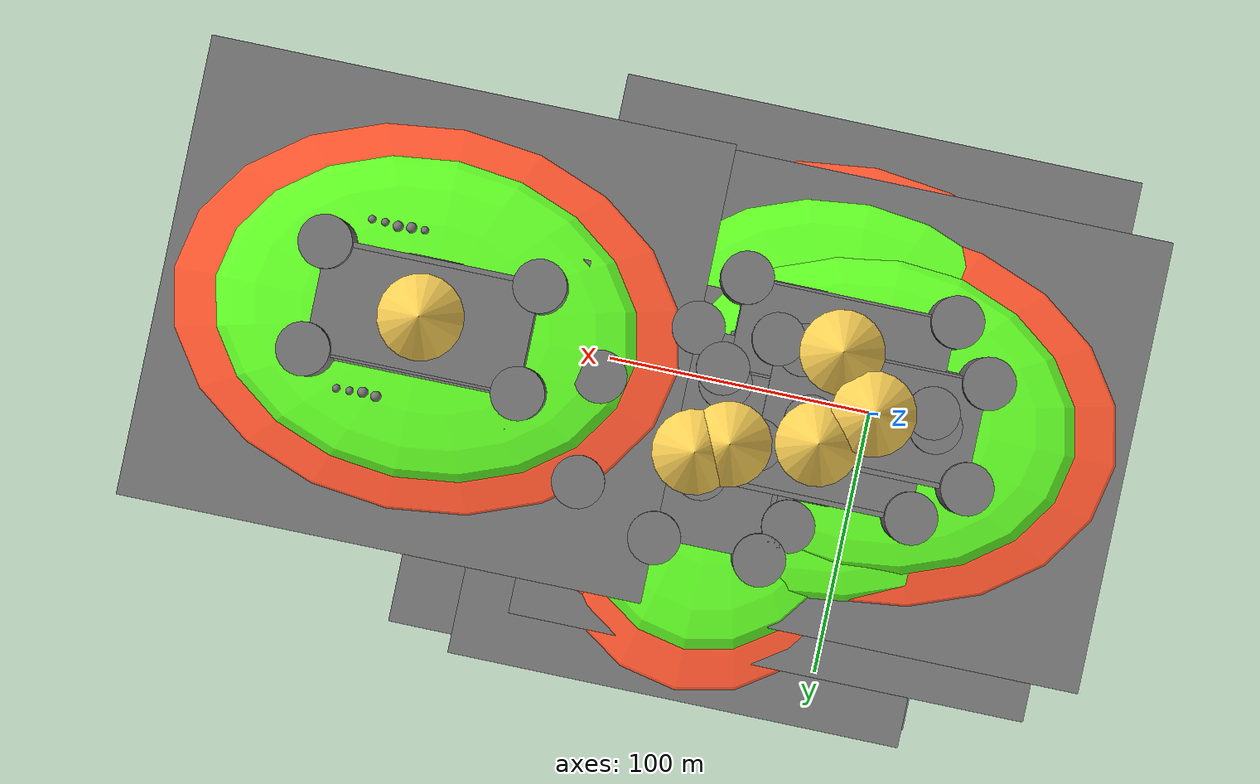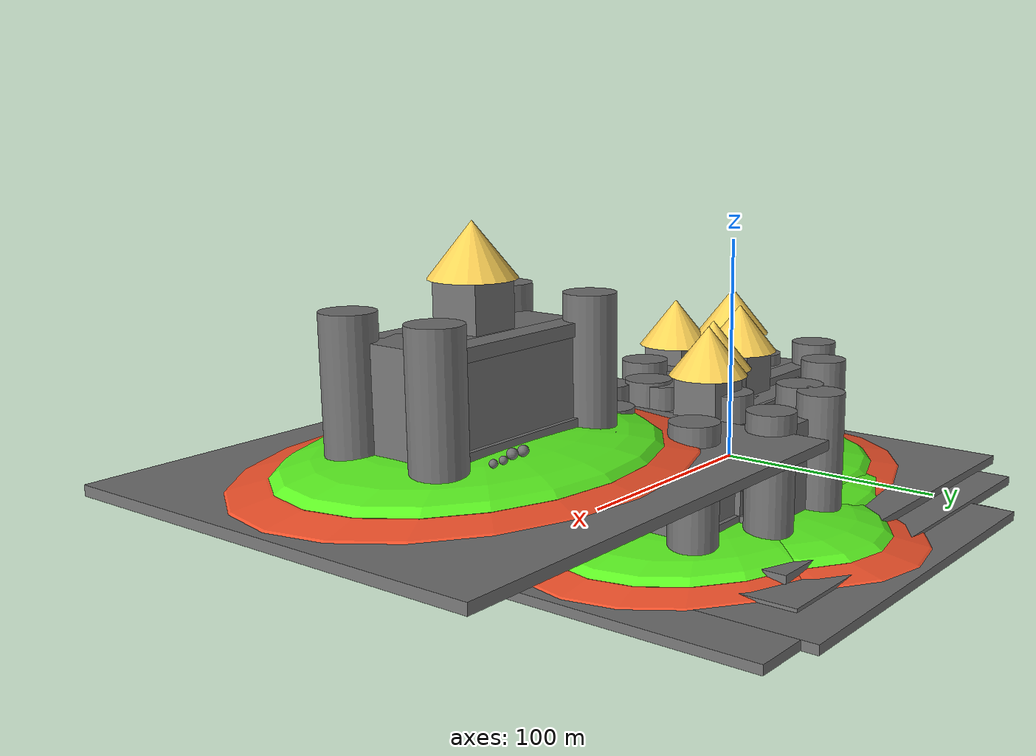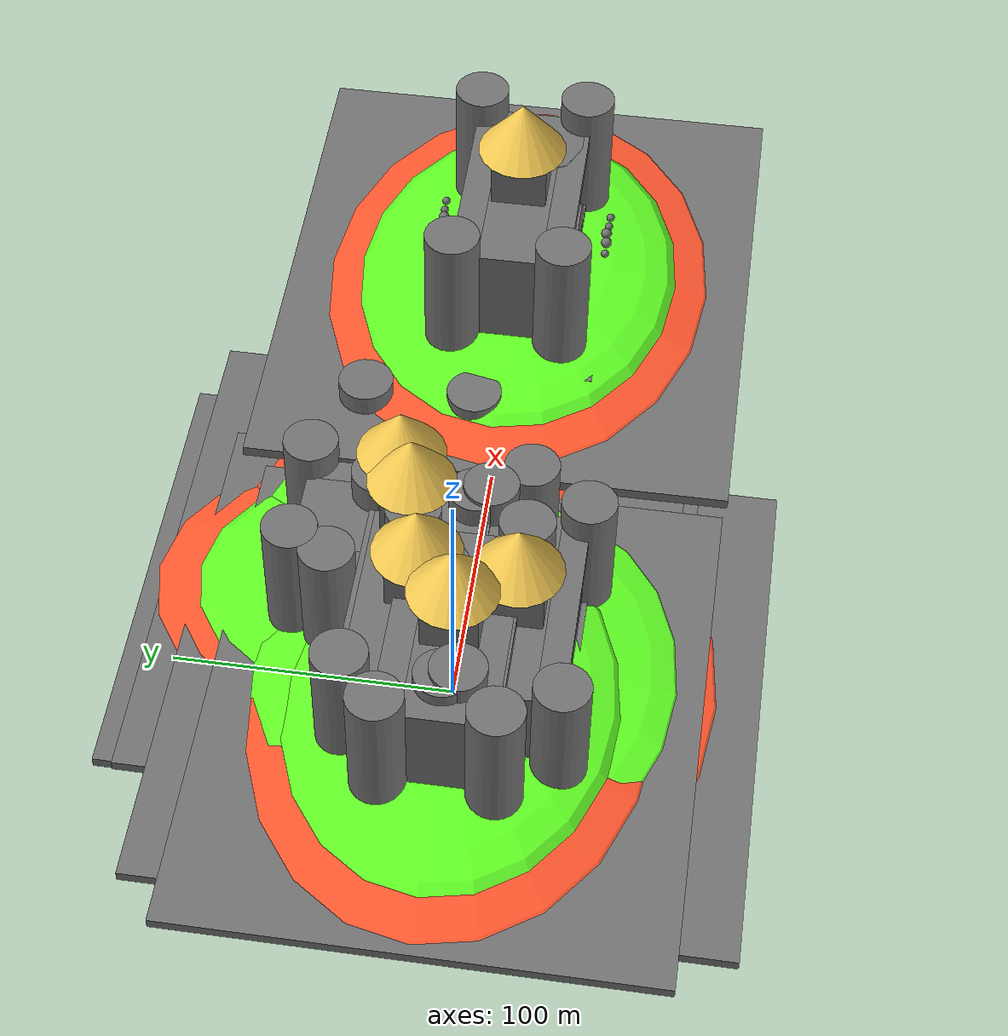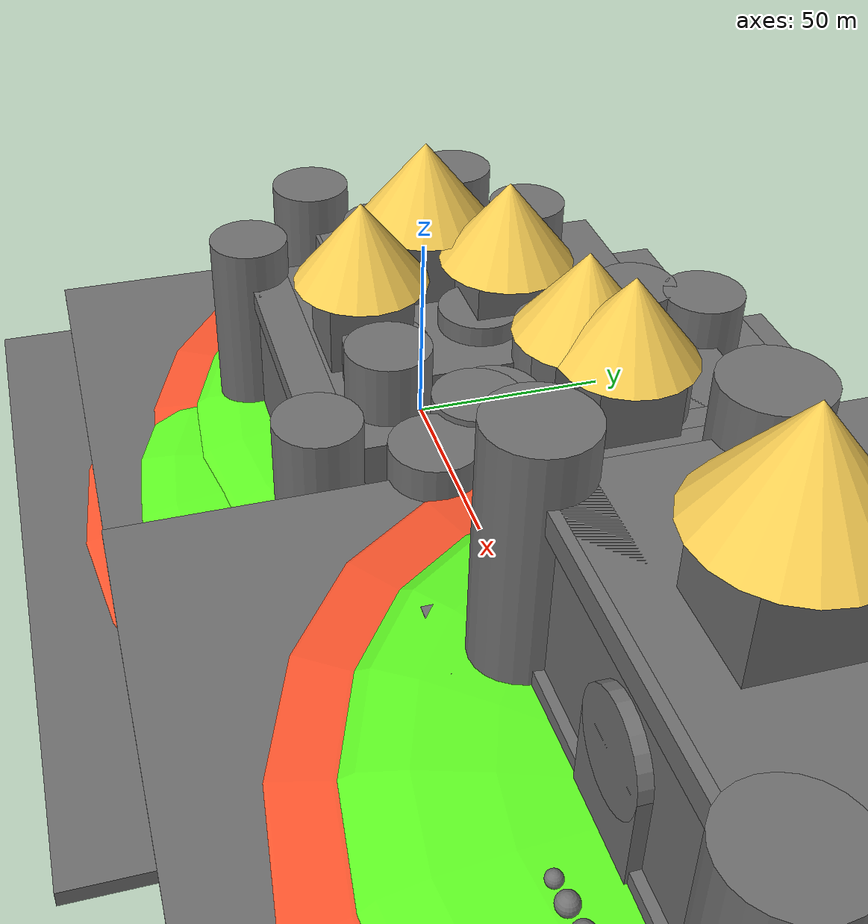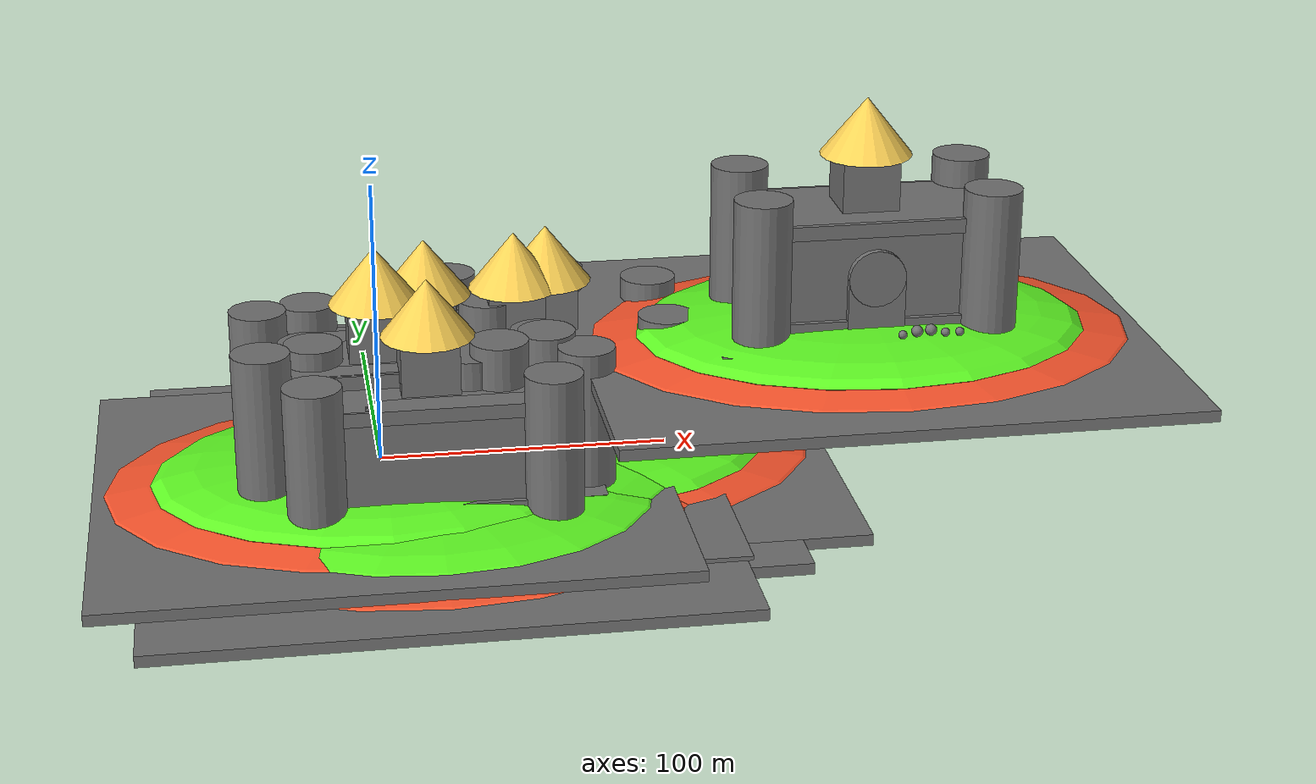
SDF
<sdf version="1.10">
 <world name="waterworld">
  <model name="north_arena_floor_model">
   <static>true</static>
   <pose>15 0 5 0 0 0</pose>
   <link name="north_arena_floor_link">
    <collision name="col">
     <geometry><box><size>8 8 0.1</size></box></geometry>
     <surface>
      <friction><ode><mu>0.9</mu><mu2>0.9</mu2><fdir1>1 0 0</fdir1></ode></friction>
      <bounce><restitution_coefficient>0.03</restitution_coefficient><threshold>1e3</threshold></bounce>
      <contact><ode><kp>1e6</kp><kd>1e3</kd><max_vel>1.0</max_vel><min_depth>0.001</min_depth></ode></contact>
     </surface>
    </collision>
    <visual name="vis">
     <geometry><box><size>8 8 0.1</size></box></geometry>
     <material>
      <ambient>0.35 0.35 0.35 1</ambient>
      <diffuse>0.45 0.45 0.45 1</diffuse>
      <pbr>
       <metal>
        <albedo_map>model://textures/grass_textures/green_grass_seamless.jpg</albedo_map>
        <roughness>0.9</roughness>
        <metalness>0.0</metalness>
       </metal>
      </pbr>
     </material>
    </visual>
   </link>
  </model>
  <model name="tidal_island_segment_1_floor_model">
   <static>true</static>
   <pose>35 -8 0.8 0 0 0</pose>
   <link name="north_arena_floor_link">
    <collision name="col">
     <geometry><box><size>8 24 0.1</size></box></geometry>
     <surface>
      <friction><ode><mu>0.9</mu><mu2>0.9</mu2><fdir1>1 0 0</fdir1></ode></friction>
      <bounce><restitution_coefficient>0.03</restitution_coefficient><threshold>1e3</threshold></bounce>
      <contact><ode><kp>1e6</kp><kd>1e3</kd><max_vel>1.0</max_vel><min_depth>0.001</min_depth></ode></contact>
     </surface>
    </collision>
    <visual name="vis">
     <geometry><box><size>8 24 0.1</size></box></geometry>
     <material>
      <ambient>0.35 0.35 0.35 1</ambient>
      <diffuse>0.45 0.45 0.45 1</diffuse>
      <pbr>
       <metal>
        <albedo_map>model://textures/grass_textures/green_grass_seamless.jpg</albedo_map>
        <roughness>0.9</roughness>
        <metalness>0.0</metalness>
       </metal>
      </pbr>
     </material>
    </visual>
   </link>
  </model>
  <model name="tidal_island_segment_5_floor_model">
   <static>true</static>
   <pose>53.3641 -8 0.7999 0 0 0</pose>
   <link name="north_arena_floor_link">
    <collision name="col">
     <geometry><box><size>8 24 0.1</size></box></geometry>
     <surface>
      <friction><ode><mu>0.9</mu><mu2>0.9</mu2><fdir1>1 0 0</fdir1></ode></friction>
      <bounce><restitution_coefficient>0.03</restitution_coefficient><threshold>1e3</threshold></bounce>
      <contact><ode><kp>1e6</kp><kd>1e3</kd><max_vel>1.0</max_vel><min_depth>0.001</min_depth></ode></contact>
     </surface>
    </collision>
    <visual name="vis">
     <geometry><box><size>8 24 0.1</size></box></geometry>
     <material>
      <ambient>0.35 0.35 0.35 1</ambient>
      <diffuse>0.45 0.45 0.45 1</diffuse>
      <pbr>
       <metal>
        <albedo_map>model://textures/grass_textures/green_grass_seamless.jpg</albedo_map>
        <roughness>0.9</roughness>
        <metalness>0.0</metalness>
       </metal>
      </pbr>
     </material>
    </visual>
   </link>
  </model>
  <model name="ramp_tower_left_landing_1_floor">
   <static>true</static>
   <pose>94.29 30 12 0 0 0</pose>
   <link name="west_arena_floor_link">
    <collision name="col">
     <geometry><box><size>20 8 0.1</size></box></geometry>
     <surface>
      <friction><ode><mu>0.9</mu><mu2>0.9</mu2><fdir1>1 0 0</fdir1></ode></friction>
      <bounce><restitution_coefficient>0.03</restitution_coefficient><threshold>1e3</threshold></bounce>
      <contact><ode><kp>1e6</kp><kd>1e3</kd><max_vel>1.0</max_vel><min_depth>0.001</min_depth></ode></contact>
     </surface>
    </collision>
    <visual name="vis">
     <geometry><box><size>20 8 0.1</size></box></geometry>
     <material>
      <ambient>0.35 0.35 0.35 1</ambient>
      <diffuse>0.45 0.45 0.45 1</diffuse>
      <pbr>
       <metal>
        <albedo_map>model://textures/grass_textures/green_grass_seamless.jpg</albedo_map>
        <roughness>0.9</roughness>
        <metalness>0.0</metalness>
       </metal>
      </pbr>
     </material>
    </visual>
   </link>
  </model>
  <model name="ramp_tower_right_landing_1_floor">
   <static>true</static>
   <pose>89.29 -15.999 4.05 0 0 0</pose>
   <link name="west_arena_floor_link">
    <collision name="col">
     <geometry><box><size>10 8 0.1</size></box></geometry>
     <surface>
      <friction><ode><mu>0.9</mu><mu2>0.9</mu2><fdir1>1 0 0</fdir1></ode></friction>
      <bounce><restitution_coefficient>0.03</restitution_coefficient><threshold>1e3</threshold></bounce>
      <contact><ode><kp>1e6</kp><kd>1e3</kd><max_vel>1.0</max_vel><min_depth>0.001</min_depth></ode></contact>
     </surface>
    </collision>
    <visual name="vis">
     <geometry><box><size>10 8 0.1</size></box></geometry>
     <material>
      <ambient>0.35 0.35 0.35 1</ambient>
      <diffuse>0.45 0.45 0.45 1</diffuse>
      <pbr>
       <metal>
        <albedo_map>model://textures/grass_textures/green_grass_seamless.jpg</albedo_map>
        <roughness>0.9</roughness>
        <metalness>0.0</metalness>
       </metal>
      </pbr>
     </material>
    </visual>
   </link>
  </model>
  <model name="ramp_tower_left_landing_2_floor">
   <static>true</static>
   <pose>104.29 -30 22.524 0 0 0</pose>
   <link name="west_arena_floor_link">
    <collision name="col">
     <geometry><box><size>20 8 0.1</size></box></geometry>
     <surface>
      <friction><ode><mu>0.9</mu><mu2>0.9</mu2><fdir1>1 0 0</fdir1></ode></friction>
      <bounce><restitution_coefficient>0.03</restitution_coefficient><threshold>1e3</threshold></bounce>
      <contact><ode><kp>1e6</kp><kd>1e3</kd><max_vel>1.0</max_vel><min_depth>0.001</min_depth></ode></contact>
     </surface>
    </collision>
    <visual name="vis">
     <geometry><box><size>20 8 0.1</size></box></geometry>
     <material>
      <ambient>0.35 0.35 0.35 1</ambient>
      <diffuse>0.45 0.45 0.45 1</diffuse>
      <pbr>
       <metal>
        <albedo_map>model://textures/grass_textures/green_grass_seamless.jpg</albedo_map>
        <roughness>0.9</roughness>
        <metalness>0.0</metalness>
       </metal>
      </pbr>
     </material>
    </visual>
   </link>
  </model>
  <model name="ramp_tower_left_landing_3_floor">
   <static>true</static>
   <pose>114.29 30 33.074 0 0 0</pose>
   <link name="west_arena_floor_link">
    <collision name="col">
     <geometry><box><size>20 8 0.1</size></box></geometry>
     <surface>
      <friction><ode><mu>0.9</mu><mu2>0.9</mu2><fdir1>1 0 0</fdir1></ode></friction>
      <bounce><restitution_coefficient>0.03</restitution_coefficient><threshold>1e3</threshold></bounce>
      <contact><ode><kp>1e6</kp><kd>1e3</kd><max_vel>1.0</max_vel><min_depth>0.001</min_depth></ode></contact>
     </surface>
    </collision>
    <visual name="vis">
     <geometry><box><size>20 8 0.1</size></box></geometry>
     <material>
      <ambient>0.35 0.35 0.35 1</ambient>
      <diffuse>0.45 0.45 0.45 1</diffuse>
      <pbr>
       <metal>
        <albedo_map>model://textures/grass_textures/green_grass_seamless.jpg</albedo_map>
        <roughness>0.9</roughness>
        <metalness>0.0</metalness>
       </metal>
      </pbr>
     </material>
    </visual>
   </link>
  </model>
  <model name="ramp_tower_left_landing_4_floor">
   <static>true</static>
   <pose>124.29 -30 43.6245 0 0 0</pose>
   <link name="west_arena_floor_link">
    <collision name="col">
     <geometry><box><size>20 8 0.1</size></box></geometry>
     <surface>
      <friction><ode><mu>0.9</mu><mu2>0.9</mu2><fdir1>1 0 0</fdir1></ode></friction>
      <bounce><restitution_coefficient>0.03</restitution_coefficient><threshold>1e3</threshold></bounce>
      <contact><ode><kp>1e6</kp><kd>1e3</kd><max_vel>1.0</max_vel><min_depth>0.001</min_depth></ode></contact>
     </surface>
    </collision>
    <visual name="vis">
     <geometry><box><size>20 8 0.1</size></box></geometry>
     <material>
      <ambient>0.35 0.35 0.35 1</ambient>
      <diffuse>0.45 0.45 0.45 1</diffuse>
      <pbr>
       <metal>
        <albedo_map>model://textures/grass_textures/green_grass_seamless.jpg</albedo_map>
        <roughness>0.9</roughness>
        <metalness>0.0</metalness>
       </metal>
      </pbr>
     </material>
    </visual>
   </link>
  </model>
  <model name="ramp_tower_top_2_floor">
   <static>true</static>
   <pose>167.571 0 45.229 0 0 0</pose>
   <link name="west_arena_floor_link">
    <collision name="col">
     <geometry><box><size>70 68 0.1</size></box></geometry>
     <surface>
      <friction><ode><mu>0.9</mu><mu2>0.9</mu2><fdir1>1 0 0</fdir1></ode></friction>
      <bounce><restitution_coefficient>0.03</restitution_coefficient><threshold>1e3</threshold></bounce>
      <contact><ode><kp>1e6</kp><kd>1e3</kd><max_vel>1.0</max_vel><min_depth>0.001</min_depth></ode></contact>
     </surface>
    </collision>
    <visual name="vis">
     <geometry><box><size>70 68 0.1</size></box></geometry>
     <material>
      <ambient>0.35 0.35 0.35 1</ambient>
      <diffuse>0.45 0.45 0.45 1</diffuse>
      <pbr>
       <metal>
        <albedo_map>model://textures/grass_textures/green_grass_seamless_8x9.png</albedo_map>
        <roughness>0.9</roughness>
        <metalness>0.0</metalness>
       </metal>
      </pbr>
     </material>
    </visual>
   </link>
  </model>
  <model name="hidden_level_1-1_floor">
   <static>true</static>
   <pose>7 0 -3.4 0 0 0</pose>
   <link name="central_arena_floor_link">
    <collision name="col">
     <geometry><box><size>25 70 0.1</size></box></geometry>
     <surface>
      <friction><ode><mu>0.9</mu><mu2>0.9</mu2><fdir1>1 0 0</fdir1></ode></friction>
      <bounce><restitution_coefficient>0.03</restitution_coefficient><threshold>1e3</threshold></bounce>
      <contact><ode><kp>1e6</kp><kd>1e3</kd><max_vel>1.0</max_vel><min_depth>0.001</min_depth></ode></contact>
     </surface>
    </collision>
    <visual name="vis">
     <geometry><box><size>25 70 0.1</size></box></geometry>
     <material>
      <ambient>0.35 0.35 0.35 1</ambient>
      <diffuse>0.45 0.45 0.45 1</diffuse>
      <pbr>
       <metal>
        <albedo_map>model://textures/grass_textures/green_grass_seamless.jpg</albedo_map>
        <roughness>0.9</roughness>
        <metalness>0.0</metalness>
       </metal>
      </pbr>
     </material>
    </visual>
   </link>
  </model>
  <model name="hidden_level_1-2_floor">
   <static>true</static>
   <pose>40 19 -3.4 0 0 0</pose>
   <link name="central_arena_floor_link">
    <collision name="col">
     <geometry><box><size>70 32 0.1</size></box></geometry>
     <surface>
      <friction><ode><mu>0.9</mu><mu2>0.9</mu2><fdir1>1 0 0</fdir1></ode></friction>
      <bounce><restitution_coefficient>0.03</restitution_coefficient><threshold>1e3</threshold></bounce>
      <contact><ode><kp>1e6</kp><kd>1e3</kd><max_vel>1.0</max_vel><min_depth>0.001</min_depth></ode></contact>
     </surface>
    </collision>
    <visual name="vis">
     <geometry><box><size>70 32 0.1</size></box></geometry>
     <material>
      <ambient>0.35 0.35 0.35 1</ambient>
      <diffuse>0.45 0.45 0.45 1</diffuse>
      <pbr>
       <metal>
        <albedo_map>model://textures/grass_textures/green_grass_seamless.jpg</albedo_map>
        <roughness>0.9</roughness>
        <metalness>0.0</metalness>
       </metal>
      </pbr>
     </material>
    </visual>
   </link>
  </model>
  <model name="hidden_level_1-3_floor">
   <static>true</static>
   <pose>40 -23 -3.4 0 0 0</pose>
   <link name="central_arena_floor_link">
    <collision name="col">
     <geometry><box><size>70 24 0.1</size></box></geometry>
     <surface>
      <friction><ode><mu>0.9</mu><mu2>0.9</mu2><fdir1>1 0 0</fdir1></ode></friction>
      <bounce><restitution_coefficient>0.03</restitution_coefficient><threshold>1e3</threshold></bounce>
      <contact><ode><kp>1e6</kp><kd>1e3</kd><max_vel>1.0</max_vel><min_depth>0.001</min_depth></ode></contact>
     </surface>
    </collision>
    <visual name="vis">
     <geometry><box><size>70 24 0.1</size></box></geometry>
     <material>
      <ambient>0.35 0.35 0.35 1</ambient>
      <diffuse>0.45 0.45 0.45 1</diffuse>
      <pbr>
       <metal>
        <albedo_map>model://textures/grass_textures/green_grass_seamless.jpg</albedo_map>
        <roughness>0.9</roughness>
        <metalness>0.0</metalness>
       </metal>
      </pbr>
     </material>
    </visual>
   </link>
  </model>
  <model name="falling_sphere_26">
   <static>false</static>
   <link name="link">
    <pose>177 -32.1 48 0 0 3.145</pose>
    <collision name="col"><geometry><sphere><radius>1.5</radius></sphere></geometry></collision>
    <visual name="vis">
     <geometry><sphere><radius>1.5</radius></sphere></geometry>
     <material>
      <ambient>0.35 0.35 0.35 1</ambient>
      <diffuse>0.45 0.45 0.45 1</diffuse>
      <pbr>
       <metal>
        <albedo_map>model://textures/stone_textures/stone_wall_seamless_1x1.jpg</albedo_map>
        <roughness>0.9</roughness>
        <metalness>0.0</metalness>
       </metal>
      </pbr>
     </material>
    </visual>
   </link>
  </model>
  <model name="falling_sphere_27">
   <static>false</static>
   <link name="link">
    <pose>182 32 49 0 0 3.145</pose>
    <collision name="col"><geometry><sphere><radius>2</radius></sphere></geometry></collision>
    <visual name="vis">
     <geometry><sphere><radius>2</radius></sphere></geometry>
     <material>
      <ambient>0.35 0.35 0.35 1</ambient>
      <diffuse>0.45 0.45 0.45 1</diffuse>
      <pbr>
       <metal>
        <albedo_map>model://textures/stone_textures/stone_wall_seamless_1x1.jpg</albedo_map>
        <roughness>0.9</roughness>
        <metalness>0.0</metalness>
       </metal>
      </pbr>
     </material>
    </visual>
   </link>
  </model>
  <model name="falling_sphere_28">
   <static>false</static>
   <link name="link">
    <pose>182 -32 49 0 0 3.145</pose>
    <collision name="col"><geometry><sphere><radius>2</radius></sphere></geometry></collision>
    <visual name="vis">
     <geometry><sphere><radius>2</radius></sphere></geometry>
     <material>
      <ambient>0.35 0.35 0.35 1</ambient>
      <diffuse>0.45 0.45 0.45 1</diffuse>
      <pbr>
       <metal>
        <albedo_map>model://textures/stone_textures/stone_wall_seamless_1x1.jpg</albedo_map>
        <roughness>0.9</roughness>
        <metalness>0.0</metalness>
       </metal>
      </pbr>
     </material>
    </visual>
   </link>
  </model>
  <model name="falling_sphere_29">
   <static>false</static>
   <link name="link">
    <pose>187 31.5 49 0 0 3.145</pose>
    <collision name="col"><geometry><sphere><radius>2</radius></sphere></geometry></collision>
    <visual name="vis">
     <geometry><sphere><radius>2</radius></sphere></geometry>
     <material>
      <ambient>0.35 0.35 0.35 1</ambient>
      <diffuse>0.45 0.45 0.45 1</diffuse>
      <pbr>
       <metal>
        <albedo_map>model://textures/stone_textures/stone_wall_seamless_1x1.jpg</albedo_map>
        <roughness>0.9</roughness>
        <metalness>0.0</metalness>
       </metal>
      </pbr>
     </material>
    </visual>
   </link>
  </model>
  <model name="falling_sphere_30">
   <static>false</static>
   <link name="link">
    <pose>187 -31.5 49 0 0 3.145</pose>
    <collision name="col"><geometry><sphere><radius>2</radius></sphere></geometry></collision>
    <visual name="vis">
     <geometry><sphere><radius>2</radius></sphere></geometry>
     <material>
      <ambient>0.35 0.35 0.35 1</ambient>
      <diffuse>0.45 0.45 0.45 1</diffuse>
      <pbr>
       <metal>
        <albedo_map>model://textures/stone_textures/stone_wall_seamless_1x1.jpg</albedo_map>
        <roughness>0.9</roughness>
        <metalness>0.0</metalness>
       </metal>
      </pbr>
     </material>
    </visual>
   </link>
  </model>
  <model name="falling_sphere_31">
   <static>false</static>
   <link name="link">
    <pose>192 32 48 0 0 3.145</pose>
    <collision name="col"><geometry><sphere><radius>1.5</radius></sphere></geometry></collision>
    <visual name="vis">
     <geometry><sphere><radius>1.5</radius></sphere></geometry>
     <material>
      <ambient>0.35 0.35 0.35 1</ambient>
      <diffuse>0.45 0.45 0.45 1</diffuse>
      <pbr>
       <metal>
        <albedo_map>model://textures/stone_textures/stone_wall_seamless_1x1.jpg</albedo_map>
        <roughness>0.9</roughness>
        <metalness>0.0</metalness>
       </metal>
      </pbr>
     </material>
    </visual>
   </link>
  </model>
  <model name="falling_sphere_32">
   <static>false</static>
   <link name="link">
    <pose>192 -32 48 0 0 3.145</pose>
    <collision name="col"><geometry><sphere><radius>1.5</radius></sphere></geometry></collision>
    <visual name="vis">
     <geometry><sphere><radius>1.5</radius></sphere></geometry>
     <material>
      <ambient>0.35 0.35 0.35 1</ambient>
      <diffuse>0.45 0.45 0.45 1</diffuse>
      <pbr>
       <metal>
        <albedo_map>model://textures/stone_textures/stone_wall_seamless_1x1.jpg</albedo_map>
        <roughness>0.9</roughness>
        <metalness>0.0</metalness>
       </metal>
      </pbr>
     </material>
    </visual>
   </link>
  </model>
  <model name="falling_sphere_33">
   <static>false</static>
   <link name="link">
    <pose>197 32.1 48 0 0 3.145</pose>
    <collision name="col"><geometry><sphere><radius>1.5</radius></sphere></geometry></collision>
    <visual name="vis">
     <geometry><sphere><radius>1.5</radius></sphere></geometry>
     <material>
      <ambient>0.35 0.35 0.35 1</ambient>
      <diffuse>0.45 0.45 0.45 1</diffuse>
      <pbr>
       <metal>
        <albedo_map>model://textures/stone_textures/stone_wall_seamless_1x1.jpg</albedo_map>
        <roughness>0.9</roughness>
        <metalness>0.0</metalness>
       </metal>
      </pbr>
     </material>
    </visual>
   </link>
  </model>
  <model name="falling_sphere_34">
   <static>false</static>
   <link name="link">
    <pose>197 -32.1 48 0 0 3.145</pose>
    <collision name="col"><geometry><sphere><radius>1.5</radius></sphere></geometry></collision>
    <visual name="vis">
     <geometry><sphere><radius>1.5</radius></sphere></geometry>
     <material>
      <ambient>0.35 0.35 0.35 1</ambient>
      <diffuse>0.45 0.45 0.45 1</diffuse>
      <pbr>
       <metal>
        <albedo_map>model://textures/stone_textures/stone_wall_seamless_1x1.jpg</albedo_map>
        <roughness>0.9</roughness>
        <metalness>0.0</metalness>
       </metal>
      </pbr>
     </material>
    </visual>
   </link>
  </model>
  <include>
   <name>collapsed_house</name>
   <uri>model://collapsed_house/model.sdf</uri>
   <pose>18 15 -3.5 0 0 0</pose>
  </include>
  <include>
   <name>collapsed_police_station</name>
   <uri>model://collapsed_police_station/model.sdf</uri>
   <pose>16 -20 -5 0 0 0</pose>
  </include>
  <include>
   <name>collapsed_fire_station</name>
   <uri>model://collapsed_fire_station/model.sdf</uri>
   <pose>50 22 -5 0 0 1.571</pose>
  </include>
  <include>
   <name>water_tower</name>
   <uri>model://water_tower/model.sdf</uri>
   <pose>62 27.5 -5 0 0 0</pose>
  </include>
  <include>
   <name>wooden_gazebo</name>
   <uri>model://wooden_gazebo/model.sdf</uri>
   <pose>170 0 45 0 0 3.145</pose>
  </include>
  <include><name>coast_waves_2</name><uri>model://coast_waves_2/model.sdf</uri></include>
 </world>
</sdf>
